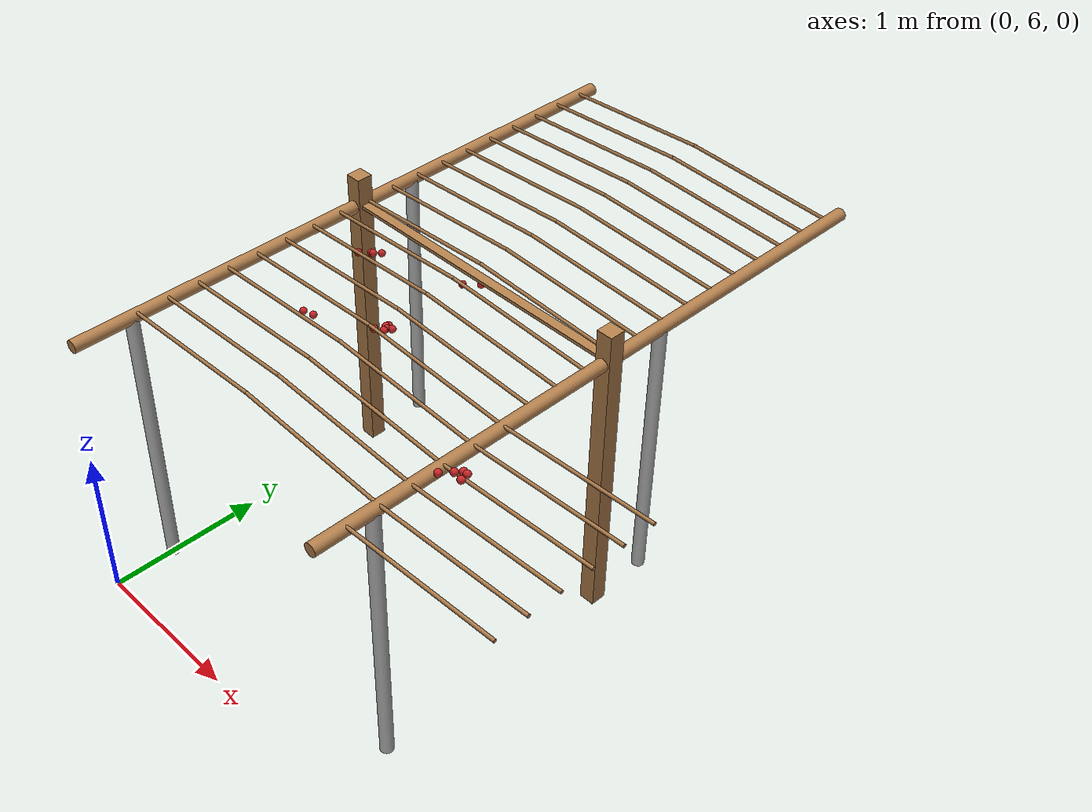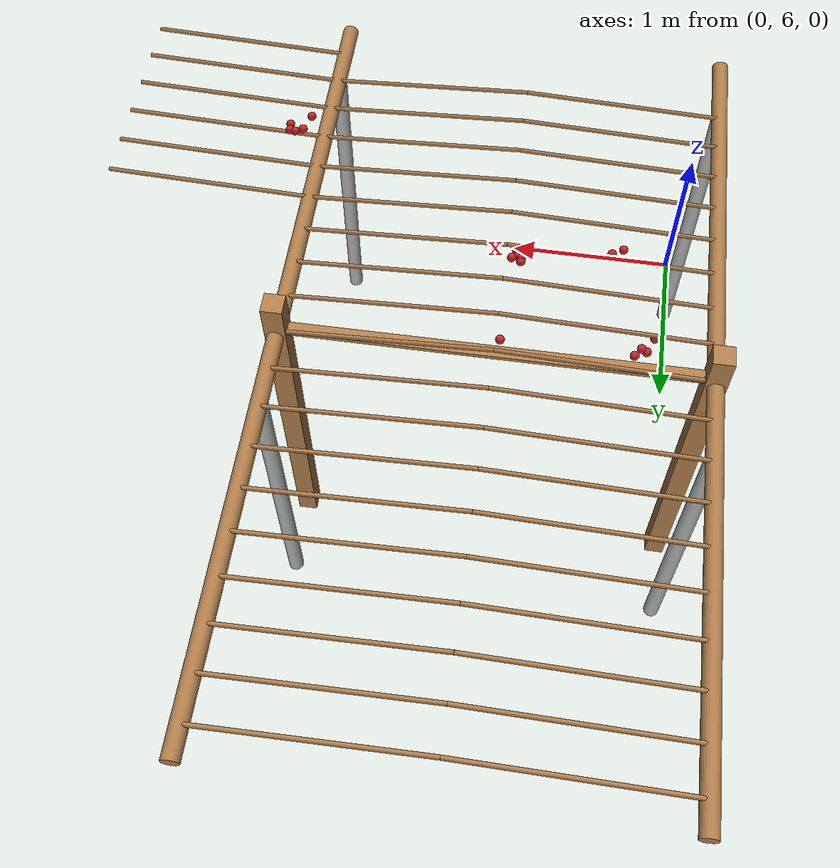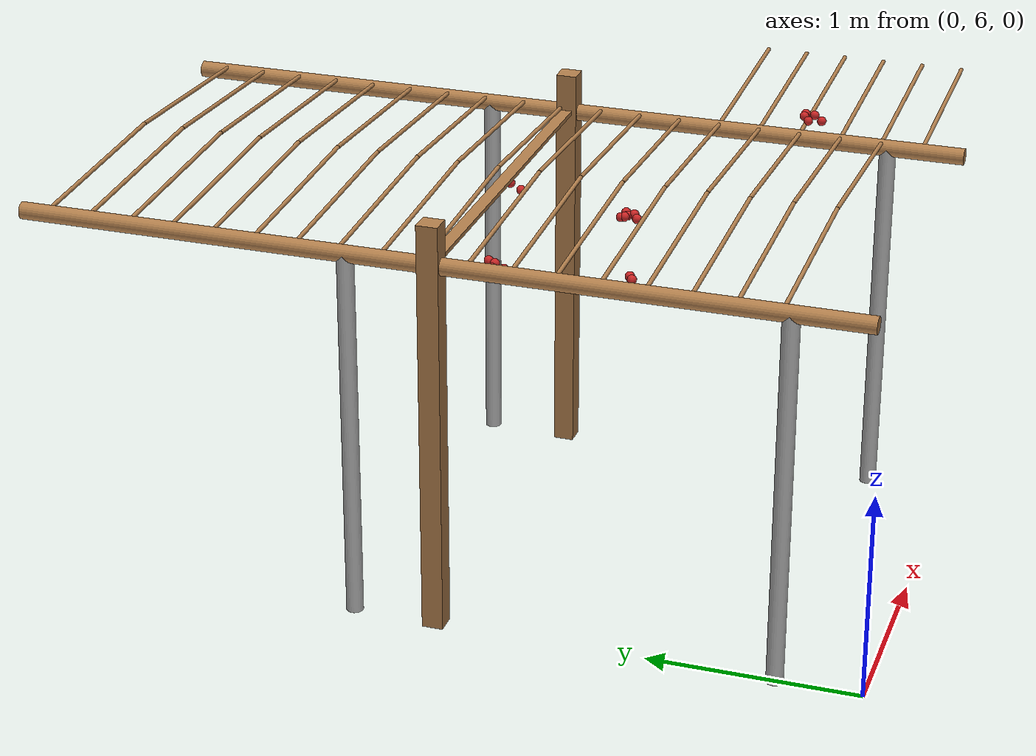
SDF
<sdf version="1.4">
 <model name="pergola">
  <include><name>post_4</name><pose>0.0 8.0 0 0 0 0</pose><uri>model://post</uri></include>
  <include><name>post_15</name><pose>2.0 8.0 0 0 0 0</pose><uri>model://post</uri></include>
  <link name="beam_4">
   <pose>1.0 8.0 1.81 0 0 0</pose>
   <collision name="collision"><geometry><box><size>2.0 0.06 0.02</size></box></geometry></collision>
   <visual name="visual">
    <geometry><box><size>2.0 0.06 0.02</size></box></geometry>
    <material><script><name>Gazebo/Wood</name></script></material>
   </visual>
   <inertial>
    <mass>5</mass>
    <inertia>
     <ixx>0.0016666666666666668</ixx>
     <ixy>0.0</ixy>
     <ixz>0.0</ixz>
     <iyy>1.6681666666666664</iyy>
     <iyz>0.0</iyz>
     <izz>1.6668333333333332</izz>
    </inertia>
   </inertial>
  </link>
  <include><name>tree_3</name><pose>0.0 6.4 0 0 0 0</pose><uri>model://tree_trunk</uri></include>
  <include><name>tree_4</name><pose>0.0 8.4 0 0 0 0</pose><uri>model://tree_trunk</uri></include>
  <include><name>tree_13</name><pose>2.0 6.4 0 0 0 0</pose><uri>model://tree_trunk</uri></include>
  <include><name>tree_14</name><pose>2.0 8.4 0 0 0 0</pose><uri>model://tree_trunk</uri></include>
  <link name="baseBranch_3">
   <pose>0.0 7.0 1.8 1.5707963267948966 0 0</pose>
   <collision name="collision">
    <geometry><cylinder><radius>0.04</radius><length>1.94</length></cylinder></geometry>
   </collision>
   <visual name="visual">
    <geometry><cylinder><radius>0.04</radius><length>1.94</length></cylinder></geometry>
    <material><script><name>Gazebo/WoodFloor</name></script></material>
   </visual>
   <inertial>
    <mass>10</mass>
    <inertia>
     <ixx>3.140333333333333</ixx>
     <ixy>0.0</ixy>
     <ixz>0.0</ixz>
     <iyy>3.140333333333333</iyy>
     <iyz>0.0</iyz>
     <izz>0.008</izz>
    </inertia>
   </inertial>
  </link>
  <link name="baseBranch_4">
   <pose>0.0 9.0 1.8 1.5707963267948966 0 0</pose>
   <collision name="collision">
    <geometry><cylinder><radius>0.04</radius><length>1.94</length></cylinder></geometry>
   </collision>
   <visual name="visual">
    <geometry><cylinder><radius>0.04</radius><length>1.94</length></cylinder></geometry>
    <material><script><name>Gazebo/WoodFloor</name></script></material>
   </visual>
   <inertial>
    <mass>10</mass>
    <inertia>
     <ixx>3.140333333333333</ixx>
     <ixy>0.0</ixy>
     <ixz>0.0</ixz>
     <iyy>3.140333333333333</iyy>
     <iyz>0.0</iyz>
     <izz>0.008</izz>
    </inertia>
   </inertial>
  </link>
  <link name="baseBranch_13">
   <pose>2.0 7.0 1.8 1.5707963267948966 0 0</pose>
   <collision name="collision">
    <geometry><cylinder><radius>0.04</radius><length>1.94</length></cylinder></geometry>
   </collision>
   <visual name="visual">
    <geometry><cylinder><radius>0.04</radius><length>1.94</length></cylinder></geometry>
    <material><script><name>Gazebo/WoodFloor</name></script></material>
   </visual>
   <inertial>
    <mass>10</mass>
    <inertia>
     <ixx>3.140333333333333</ixx>
     <ixy>0.0</ixy>
     <ixz>0.0</ixz>
     <iyy>3.140333333333333</iyy>
     <iyz>0.0</iyz>
     <izz>0.008</izz>
    </inertia>
   </inertial>
  </link>
  <link name="baseBranch_14">
   <pose>2.0 9.0 1.8 1.5707963267948966 0 0</pose>
   <collision name="collision">
    <geometry><cylinder><radius>0.04</radius><length>1.94</length></cylinder></geometry>
   </collision>
   <visual name="visual">
    <geometry><cylinder><radius>0.04</radius><length>1.94</length></cylinder></geometry>
    <material><script><name>Gazebo/WoodFloor</name></script></material>
   </visual>
   <inertial>
    <mass>10</mass>
    <inertia>
     <ixx>3.140333333333333</ixx>
     <ixy>0.0</ixy>
     <ixz>0.0</ixz>
     <iyy>3.140333333333333</iyy>
     <iyz>0.0</iyz>
     <izz>0.008</izz>
    </inertia>
   </inertial>
  </link>
  <link name="vine_64">
   <pose>0.5 6.430000000000001 1.85 0 1.5208379310729538 0</pose>
   <collision name="collision">
    <geometry><cylinder><radius>0.01</radius><length>1.0012492197250393</length></cylinder></geometry>
   </collision>
   <visual name="visual">
    <geometry><cylinder><radius>0.01</radius><length>1.0012492197250393</length></cylinder></geometry>
    <material><script><name>Gazebo/WoodFloor</name></script></material>
   </visual>
   <inertial>
    <mass>5</mass>
    <inertia>
     <ixx>0.41783333333333345</ixx>
     <ixy>0.0</ixy>
     <ixz>0.0</ixz>
     <iyy>0.41783333333333345</iyy>
     <iyz>0.0</iyz>
     <izz>0.00025</izz>
    </inertia>
   </inertial>
  </link>
  <link name="vine_65">
   <pose>1.5 6.430000000000001 1.85 0 -1.5208379310729538 0</pose>
   <collision name="collision">
    <geometry><cylinder><radius>0.01</radius><length>1.0012492197250393</length></cylinder></geometry>
   </collision>
   <visual name="visual">
    <geometry><cylinder><radius>0.01</radius><length>1.0012492197250393</length></cylinder></geometry>
    <material><script><name>Gazebo/WoodFloor</name></script></material>
   </visual>
   <inertial>
    <mass>5</mass>
    <inertia>
     <ixx>0.41783333333333345</ixx>
     <ixy>0.0</ixy>
     <ixz>0.0</ixz>
     <iyy>0.41783333333333345</iyy>
     <iyz>0.0</iyz>
     <izz>0.00025</izz>
    </inertia>
   </inertial>
  </link>
  <link name="vine_66">
   <pose>0.5 6.630000000000001 1.85 0 1.5208379310729538 0</pose>
   <collision name="collision">
    <geometry><cylinder><radius>0.01</radius><length>1.0012492197250393</length></cylinder></geometry>
   </collision>
   <visual name="visual">
    <geometry><cylinder><radius>0.01</radius><length>1.0012492197250393</length></cylinder></geometry>
    <material><script><name>Gazebo/WoodFloor</name></script></material>
   </visual>
   <inertial>
    <mass>5</mass>
    <inertia>
     <ixx>0.41783333333333345</ixx>
     <ixy>0.0</ixy>
     <ixz>0.0</ixz>
     <iyy>0.41783333333333345</iyy>
     <iyz>0.0</iyz>
     <izz>0.00025</izz>
    </inertia>
   </inertial>
  </link>
  <link name="vine_67">
   <pose>1.5 6.630000000000001 1.85 0 -1.5208379310729538 0</pose>
   <collision name="collision">
    <geometry><cylinder><radius>0.01</radius><length>1.0012492197250393</length></cylinder></geometry>
   </collision>
   <visual name="visual">
    <geometry><cylinder><radius>0.01</radius><length>1.0012492197250393</length></cylinder></geometry>
    <material><script><name>Gazebo/WoodFloor</name></script></material>
   </visual>
   <inertial>
    <mass>5</mass>
    <inertia>
     <ixx>0.41783333333333345</ixx>
     <ixy>0.0</ixy>
     <ixz>0.0</ixz>
     <iyy>0.41783333333333345</iyy>
     <iyz>0.0</iyz>
     <izz>0.00025</izz>
    </inertia>
   </inertial>
  </link>
  <link name="vine_68">
   <pose>0.5 6.830000000000001 1.85 0 1.5208379310729538 0</pose>
   <collision name="collision">
    <geometry><cylinder><radius>0.01</radius><length>1.0012492197250393</length></cylinder></geometry>
   </collision>
   <visual name="visual">
    <geometry><cylinder><radius>0.01</radius><length>1.0012492197250393</length></cylinder></geometry>
    <material><script><name>Gazebo/WoodFloor</name></script></material>
   </visual>
   <inertial>
    <mass>5</mass>
    <inertia>
     <ixx>0.41783333333333345</ixx>
     <ixy>0.0</ixy>
     <ixz>0.0</ixz>
     <iyy>0.41783333333333345</iyy>
     <iyz>0.0</iyz>
     <izz>0.00025</izz>
    </inertia>
   </inertial>
  </link>
  <link name="vine_69">
   <pose>1.5 6.830000000000001 1.85 0 -1.5208379310729538 0</pose>
   <collision name="collision">
    <geometry><cylinder><radius>0.01</radius><length>1.0012492197250393</length></cylinder></geometry>
   </collision>
   <visual name="visual">
    <geometry><cylinder><radius>0.01</radius><length>1.0012492197250393</length></cylinder></geometry>
    <material><script><name>Gazebo/WoodFloor</name></script></material>
   </visual>
   <inertial>
    <mass>5</mass>
    <inertia>
     <ixx>0.41783333333333345</ixx>
     <ixy>0.0</ixy>
     <ixz>0.0</ixz>
     <iyy>0.41783333333333345</iyy>
     <iyz>0.0</iyz>
     <izz>0.00025</izz>
    </inertia>
   </inertial>
  </link>
  <link name="vine_70">
   <pose>0.5 7.03 1.85 0 1.5208379310729538 0</pose>
   <collision name="collision">
    <geometry><cylinder><radius>0.01</radius><length>1.0012492197250393</length></cylinder></geometry>
   </collision>
   <visual name="visual">
    <geometry><cylinder><radius>0.01</radius><length>1.0012492197250393</length></cylinder></geometry>
    <material><script><name>Gazebo/WoodFloor</name></script></material>
   </visual>
   <inertial>
    <mass>5</mass>
    <inertia>
     <ixx>0.41783333333333345</ixx>
     <ixy>0.0</ixy>
     <ixz>0.0</ixz>
     <iyy>0.41783333333333345</iyy>
     <iyz>0.0</iyz>
     <izz>0.00025</izz>
    </inertia>
   </inertial>
  </link>
  <link name="vine_71">
   <pose>1.5 7.03 1.85 0 -1.5208379310729538 0</pose>
   <collision name="collision">
    <geometry><cylinder><radius>0.01</radius><length>1.0012492197250393</length></cylinder></geometry>
   </collision>
   <visual name="visual">
    <geometry><cylinder><radius>0.01</radius><length>1.0012492197250393</length></cylinder></geometry>
    <material><script><name>Gazebo/WoodFloor</name></script></material>
   </visual>
   <inertial>
    <mass>5</mass>
    <inertia>
     <ixx>0.41783333333333345</ixx>
     <ixy>0.0</ixy>
     <ixz>0.0</ixz>
     <iyy>0.41783333333333345</iyy>
     <iyz>0.0</iyz>
     <izz>0.00025</izz>
    </inertia>
   </inertial>
  </link>
  <link name="vine_72">
   <pose>0.5 7.23 1.85 0 1.5208379310729538 0</pose>
   <collision name="collision">
    <geometry><cylinder><radius>0.01</radius><length>1.0012492197250393</length></cylinder></geometry>
   </collision>
   <visual name="visual">
    <geometry><cylinder><radius>0.01</radius><length>1.0012492197250393</length></cylinder></geometry>
    <material><script><name>Gazebo/WoodFloor</name></script></material>
   </visual>
   <inertial>
    <mass>5</mass>
    <inertia>
     <ixx>0.41783333333333345</ixx>
     <ixy>0.0</ixy>
     <ixz>0.0</ixz>
     <iyy>0.41783333333333345</iyy>
     <iyz>0.0</iyz>
     <izz>0.00025</izz>
    </inertia>
   </inertial>
  </link>
  <link name="vine_73">
   <pose>1.5 7.23 1.85 0 -1.5208379310729538 0</pose>
   <collision name="collision">
    <geometry><cylinder><radius>0.01</radius><length>1.0012492197250393</length></cylinder></geometry>
   </collision>
   <visual name="visual">
    <geometry><cylinder><radius>0.01</radius><length>1.0012492197250393</length></cylinder></geometry>
    <material><script><name>Gazebo/WoodFloor</name></script></material>
   </visual>
   <inertial>
    <mass>5</mass>
    <inertia>
     <ixx>0.41783333333333345</ixx>
     <ixy>0.0</ixy>
     <ixz>0.0</ixz>
     <iyy>0.41783333333333345</iyy>
     <iyz>0.0</iyz>
     <izz>0.00025</izz>
    </inertia>
   </inertial>
  </link>
  <link name="vine_74">
   <pose>0.5 7.430000000000001 1.85 0 1.5208379310729538 0</pose>
   <collision name="collision">
    <geometry><cylinder><radius>0.01</radius><length>1.0012492197250393</length></cylinder></geometry>
   </collision>
   <visual name="visual">
    <geometry><cylinder><radius>0.01</radius><length>1.0012492197250393</length></cylinder></geometry>
    <material><script><name>Gazebo/WoodFloor</name></script></material>
   </visual>
   <inertial>
    <mass>5</mass>
    <inertia>
     <ixx>0.41783333333333345</ixx>
     <ixy>0.0</ixy>
     <ixz>0.0</ixz>
     <iyy>0.41783333333333345</iyy>
     <iyz>0.0</iyz>
     <izz>0.00025</izz>
    </inertia>
   </inertial>
  </link>
  <link name="vine_75">
   <pose>1.5 7.430000000000001 1.85 0 -1.5208379310729538 0</pose>
   <collision name="collision">
    <geometry><cylinder><radius>0.01</radius><length>1.0012492197250393</length></cylinder></geometry>
   </collision>
   <visual name="visual">
    <geometry><cylinder><radius>0.01</radius><length>1.0012492197250393</length></cylinder></geometry>
    <material><script><name>Gazebo/WoodFloor</name></script></material>
   </visual>
   <inertial>
    <mass>5</mass>
    <inertia>
     <ixx>0.41783333333333345</ixx>
     <ixy>0.0</ixy>
     <ixz>0.0</ixz>
     <iyy>0.41783333333333345</iyy>
     <iyz>0.0</iyz>
     <izz>0.00025</izz>
    </inertia>
   </inertial>
  </link>
  <link name="vine_76">
   <pose>0.5 7.630000000000001 1.85 0 1.5208379310729538 0</pose>
   <collision name="collision">
    <geometry><cylinder><radius>0.01</radius><length>1.0012492197250393</length></cylinder></geometry>
   </collision>
   <visual name="visual">
    <geometry><cylinder><radius>0.01</radius><length>1.0012492197250393</length></cylinder></geometry>
    <material><script><name>Gazebo/WoodFloor</name></script></material>
   </visual>
   <inertial>
    <mass>5</mass>
    <inertia>
     <ixx>0.41783333333333345</ixx>
     <ixy>0.0</ixy>
     <ixz>0.0</ixz>
     <iyy>0.41783333333333345</iyy>
     <iyz>0.0</iyz>
     <izz>0.00025</izz>
    </inertia>
   </inertial>
  </link>
  <link name="vine_77">
   <pose>1.5 7.630000000000001 1.85 0 -1.5208379310729538 0</pose>
   <collision name="collision">
    <geometry><cylinder><radius>0.01</radius><length>1.0012492197250393</length></cylinder></geometry>
   </collision>
   <visual name="visual">
    <geometry><cylinder><radius>0.01</radius><length>1.0012492197250393</length></cylinder></geometry>
    <material><script><name>Gazebo/WoodFloor</name></script></material>
   </visual>
   <inertial>
    <mass>5</mass>
    <inertia>
     <ixx>0.41783333333333345</ixx>
     <ixy>0.0</ixy>
     <ixz>0.0</ixz>
     <iyy>0.41783333333333345</iyy>
     <iyz>0.0</iyz>
     <izz>0.00025</izz>
    </inertia>
   </inertial>
  </link>
  <link name="vine_78">
   <pose>0.5 7.830000000000001 1.85 0 1.5208379310729538 0</pose>
   <collision name="collision">
    <geometry><cylinder><radius>0.01</radius><length>1.0012492197250393</length></cylinder></geometry>
   </collision>
   <visual name="visual">
    <geometry><cylinder><radius>0.01</radius><length>1.0012492197250393</length></cylinder></geometry>
    <material><script><name>Gazebo/WoodFloor</name></script></material>
   </visual>
   <inertial>
    <mass>5</mass>
    <inertia>
     <ixx>0.41783333333333345</ixx>
     <ixy>0.0</ixy>
     <ixz>0.0</ixz>
     <iyy>0.41783333333333345</iyy>
     <iyz>0.0</iyz>
     <izz>0.00025</izz>
    </inertia>
   </inertial>
  </link>
  <link name="vine_79">
   <pose>1.5 7.830000000000001 1.85 0 -1.5208379310729538 0</pose>
   <collision name="collision">
    <geometry><cylinder><radius>0.01</radius><length>1.0012492197250393</length></cylinder></geometry>
   </collision>
   <visual name="visual">
    <geometry><cylinder><radius>0.01</radius><length>1.0012492197250393</length></cylinder></geometry>
    <material><script><name>Gazebo/WoodFloor</name></script></material>
   </visual>
   <inertial>
    <mass>5</mass>
    <inertia>
     <ixx>0.41783333333333345</ixx>
     <ixy>0.0</ixy>
     <ixz>0.0</ixz>
     <iyy>0.41783333333333345</iyy>
     <iyz>0.0</iyz>
     <izz>0.00025</izz>
    </inertia>
   </inertial>
  </link>
  <link name="vine_80">
   <pose>0.5 8.03 1.85 0 1.5208379310729538 0</pose>
   <collision name="collision">
    <geometry><cylinder><radius>0.01</radius><length>1.0012492197250393</length></cylinder></geometry>
   </collision>
   <visual name="visual">
    <geometry><cylinder><radius>0.01</radius><length>1.0012492197250393</length></cylinder></geometry>
    <material><script><name>Gazebo/WoodFloor</name></script></material>
   </visual>
   <inertial>
    <mass>5</mass>
    <inertia>
     <ixx>0.41783333333333345</ixx>
     <ixy>0.0</ixy>
     <ixz>0.0</ixz>
     <iyy>0.41783333333333345</iyy>
     <iyz>0.0</iyz>
     <izz>0.00025</izz>
    </inertia>
   </inertial>
  </link>
  <link name="vine_81">
   <pose>1.5 8.03 1.85 0 -1.5208379310729538 0</pose>
   <collision name="collision">
    <geometry><cylinder><radius>0.01</radius><length>1.0012492197250393</length></cylinder></geometry>
   </collision>
   <visual name="visual">
    <geometry><cylinder><radius>0.01</radius><length>1.0012492197250393</length></cylinder></geometry>
    <material><script><name>Gazebo/WoodFloor</name></script></material>
   </visual>
   <inertial>
    <mass>5</mass>
    <inertia>
     <ixx>0.41783333333333345</ixx>
     <ixy>0.0</ixy>
     <ixz>0.0</ixz>
     <iyy>0.41783333333333345</iyy>
     <iyz>0.0</iyz>
     <izz>0.00025</izz>
    </inertia>
   </inertial>
  </link>
  <link name="vine_82">
   <pose>0.5 8.23 1.85 0 1.5208379310729538 0</pose>
   <collision name="collision">
    <geometry><cylinder><radius>0.01</radius><length>1.0012492197250393</length></cylinder></geometry>
   </collision>
   <visual name="visual">
    <geometry><cylinder><radius>0.01</radius><length>1.0012492197250393</length></cylinder></geometry>
    <material><script><name>Gazebo/WoodFloor</name></script></material>
   </visual>
   <inertial>
    <mass>5</mass>
    <inertia>
     <ixx>0.41783333333333345</ixx>
     <ixy>0.0</ixy>
     <ixz>0.0</ixz>
     <iyy>0.41783333333333345</iyy>
     <iyz>0.0</iyz>
     <izz>0.00025</izz>
    </inertia>
   </inertial>
  </link>
  <link name="vine_83">
   <pose>1.5 8.23 1.85 0 -1.5208379310729538 0</pose>
   <collision name="collision">
    <geometry><cylinder><radius>0.01</radius><length>1.0012492197250393</length></cylinder></geometry>
   </collision>
   <visual name="visual">
    <geometry><cylinder><radius>0.01</radius><length>1.0012492197250393</length></cylinder></geometry>
    <material><script><name>Gazebo/WoodFloor</name></script></material>
   </visual>
   <inertial>
    <mass>5</mass>
    <inertia>
     <ixx>0.41783333333333345</ixx>
     <ixy>0.0</ixy>
     <ixz>0.0</ixz>
     <iyy>0.41783333333333345</iyy>
     <iyz>0.0</iyz>
     <izz>0.00025</izz>
    </inertia>
   </inertial>
  </link>
  <link name="vine_84">
   <pose>0.5 8.43 1.85 0 1.5208379310729538 0</pose>
   <collision name="collision">
    <geometry><cylinder><radius>0.01</radius><length>1.0012492197250393</length></cylinder></geometry>
   </collision>
   <visual name="visual">
    <geometry><cylinder><radius>0.01</radius><length>1.0012492197250393</length></cylinder></geometry>
    <material><script><name>Gazebo/WoodFloor</name></script></material>
   </visual>
   <inertial>
    <mass>5</mass>
    <inertia>
     <ixx>0.41783333333333345</ixx>
     <ixy>0.0</ixy>
     <ixz>0.0</ixz>
     <iyy>0.41783333333333345</iyy>
     <iyz>0.0</iyz>
     <izz>0.00025</izz>
    </inertia>
   </inertial>
  </link>
  <link name="vine_85">
   <pose>1.5 8.43 1.85 0 -1.5208379310729538 0</pose>
   <collision name="collision">
    <geometry><cylinder><radius>0.01</radius><length>1.0012492197250393</length></cylinder></geometry>
   </collision>
   <visual name="visual">
    <geometry><cylinder><radius>0.01</radius><length>1.0012492197250393</length></cylinder></geometry>
    <material><script><name>Gazebo/WoodFloor</name></script></material>
   </visual>
   <inertial>
    <mass>5</mass>
    <inertia>
     <ixx>0.41783333333333345</ixx>
     <ixy>0.0</ixy>
     <ixz>0.0</ixz>
     <iyy>0.41783333333333345</iyy>
     <iyz>0.0</iyz>
     <izz>0.00025</izz>
    </inertia>
   </inertial>
  </link>
  <link name="vine_86">
   <pose>0.5 8.629999999999999 1.85 0 1.5208379310729538 0</pose>
   <collision name="collision">
    <geometry><cylinder><radius>0.01</radius><length>1.0012492197250393</length></cylinder></geometry>
   </collision>
   <visual name="visual">
    <geometry><cylinder><radius>0.01</radius><length>1.0012492197250393</length></cylinder></geometry>
    <material><script><name>Gazebo/WoodFloor</name></script></material>
   </visual>
   <inertial>
    <mass>5</mass>
    <inertia>
     <ixx>0.41783333333333345</ixx>
     <ixy>0.0</ixy>
     <ixz>0.0</ixz>
     <iyy>0.41783333333333345</iyy>
     <iyz>0.0</iyz>
     <izz>0.00025</izz>
    </inertia>
   </inertial>
  </link>
  <link name="vine_87">
   <pose>1.5 8.629999999999999 1.85 0 -1.5208379310729538 0</pose>
   <collision name="collision">
    <geometry><cylinder><radius>0.01</radius><length>1.0012492197250393</length></cylinder></geometry>
   </collision>
   <visual name="visual">
    <geometry><cylinder><radius>0.01</radius><length>1.0012492197250393</length></cylinder></geometry>
    <material><script><name>Gazebo/WoodFloor</name></script></material>
   </visual>
   <inertial>
    <mass>5</mass>
    <inertia>
     <ixx>0.41783333333333345</ixx>
     <ixy>0.0</ixy>
     <ixz>0.0</ixz>
     <iyy>0.41783333333333345</iyy>
     <iyz>0.0</iyz>
     <izz>0.00025</izz>
    </inertia>
   </inertial>
  </link>
  <link name="vine_88">
   <pose>0.5 8.83 1.85 0 1.5208379310729538 0</pose>
   <collision name="collision">
    <geometry><cylinder><radius>0.01</radius><length>1.0012492197250393</length></cylinder></geometry>
   </collision>
   <visual name="visual">
    <geometry><cylinder><radius>0.01</radius><length>1.0012492197250393</length></cylinder></geometry>
    <material><script><name>Gazebo/WoodFloor</name></script></material>
   </visual>
   <inertial>
    <mass>5</mass>
    <inertia>
     <ixx>0.41783333333333345</ixx>
     <ixy>0.0</ixy>
     <ixz>0.0</ixz>
     <iyy>0.41783333333333345</iyy>
     <iyz>0.0</iyz>
     <izz>0.00025</izz>
    </inertia>
   </inertial>
  </link>
  <link name="vine_89">
   <pose>1.5 8.83 1.85 0 -1.5208379310729538 0</pose>
   <collision name="collision">
    <geometry><cylinder><radius>0.01</radius><length>1.0012492197250393</length></cylinder></geometry>
   </collision>
   <visual name="visual">
    <geometry><cylinder><radius>0.01</radius><length>1.0012492197250393</length></cylinder></geometry>
    <material><script><name>Gazebo/WoodFloor</name></script></material>
   </visual>
   <inertial>
    <mass>5</mass>
    <inertia>
     <ixx>0.41783333333333345</ixx>
     <ixy>0.0</ixy>
     <ixz>0.0</ixz>
     <iyy>0.41783333333333345</iyy>
     <iyz>0.0</iyz>
     <izz>0.00025</izz>
    </inertia>
   </inertial>
  </link>
  <link name="vine_90">
   <pose>0.5 9.03 1.85 0 1.5208379310729538 0</pose>
   <collision name="collision">
    <geometry><cylinder><radius>0.01</radius><length>1.0012492197250393</length></cylinder></geometry>
   </collision>
   <visual name="visual">
    <geometry><cylinder><radius>0.01</radius><length>1.0012492197250393</length></cylinder></geometry>
    <material><script><name>Gazebo/WoodFloor</name></script></material>
   </visual>
   <inertial>
    <mass>5</mass>
    <inertia>
     <ixx>0.41783333333333345</ixx>
     <ixy>0.0</ixy>
     <ixz>0.0</ixz>
     <iyy>0.41783333333333345</iyy>
     <iyz>0.0</iyz>
     <izz>0.00025</izz>
    </inertia>
   </inertial>
  </link>
  <link name="vine_91">
   <pose>1.5 9.03 1.85 0 -1.5208379310729538 0</pose>
   <collision name="collision">
    <geometry><cylinder><radius>0.01</radius><length>1.0012492197250393</length></cylinder></geometry>
   </collision>
   <visual name="visual">
    <geometry><cylinder><radius>0.01</radius><length>1.0012492197250393</length></cylinder></geometry>
    <material><script><name>Gazebo/WoodFloor</name></script></material>
   </visual>
   <inertial>
    <mass>5</mass>
    <inertia>
     <ixx>0.41783333333333345</ixx>
     <ixy>0.0</ixy>
     <ixz>0.0</ixz>
     <iyy>0.41783333333333345</iyy>
     <iyz>0.0</iyz>
     <izz>0.00025</izz>
    </inertia>
   </inertial>
  </link>
  <link name="vine_92">
   <pose>0.5 9.23 1.85 0 1.5208379310729538 0</pose>
   <collision name="collision">
    <geometry><cylinder><radius>0.01</radius><length>1.0012492197250393</length></cylinder></geometry>
   </collision>
   <visual name="visual">
    <geometry><cylinder><radius>0.01</radius><length>1.0012492197250393</length></cylinder></geometry>
    <material><script><name>Gazebo/WoodFloor</name></script></material>
   </visual>
   <inertial>
    <mass>5</mass>
    <inertia>
     <ixx>0.41783333333333345</ixx>
     <ixy>0.0</ixy>
     <ixz>0.0</ixz>
     <iyy>0.41783333333333345</iyy>
     <iyz>0.0</iyz>
     <izz>0.00025</izz>
    </inertia>
   </inertial>
  </link>
  <link name="vine_93">
   <pose>1.5 9.23 1.85 0 -1.5208379310729538 0</pose>
   <collision name="collision">
    <geometry><cylinder><radius>0.01</radius><length>1.0012492197250393</length></cylinder></geometry>
   </collision>
   <visual name="visual">
    <geometry><cylinder><radius>0.01</radius><length>1.0012492197250393</length></cylinder></geometry>
    <material><script><name>Gazebo/WoodFloor</name></script></material>
   </visual>
   <inertial>
    <mass>5</mass>
    <inertia>
     <ixx>0.41783333333333345</ixx>
     <ixy>0.0</ixy>
     <ixz>0.0</ixz>
     <iyy>0.41783333333333345</iyy>
     <iyz>0.0</iyz>
     <izz>0.00025</izz>
    </inertia>
   </inertial>
  </link>
  <link name="vine_94">
   <pose>0.5 9.43 1.85 0 1.5208379310729538 0</pose>
   <collision name="collision">
    <geometry><cylinder><radius>0.01</radius><length>1.0012492197250393</length></cylinder></geometry>
   </collision>
   <visual name="visual">
    <geometry><cylinder><radius>0.01</radius><length>1.0012492197250393</length></cylinder></geometry>
    <material><script><name>Gazebo/WoodFloor</name></script></material>
   </visual>
   <inertial>
    <mass>5</mass>
    <inertia>
     <ixx>0.41783333333333345</ixx>
     <ixy>0.0</ixy>
     <ixz>0.0</ixz>
     <iyy>0.41783333333333345</iyy>
     <iyz>0.0</iyz>
     <izz>0.00025</izz>
    </inertia>
   </inertial>
  </link>
  <link name="vine_95">
   <pose>1.5 9.43 1.85 0 -1.5208379310729538 0</pose>
   <collision name="collision">
    <geometry><cylinder><radius>0.01</radius><length>1.0012492197250393</length></cylinder></geometry>
   </collision>
   <visual name="visual">
    <geometry><cylinder><radius>0.01</radius><length>1.0012492197250393</length></cylinder></geometry>
    <material><script><name>Gazebo/WoodFloor</name></script></material>
   </visual>
   <inertial>
    <mass>5</mass>
    <inertia>
     <ixx>0.41783333333333345</ixx>
     <ixy>0.0</ixy>
     <ixz>0.0</ixz>
     <iyy>0.41783333333333345</iyy>
     <iyz>0.0</iyz>
     <izz>0.00025</izz>
    </inertia>
   </inertial>
  </link>
  <link name="vine_96">
   <pose>0.5 9.63 1.85 0 1.5208379310729538 0</pose>
   <collision name="collision">
    <geometry><cylinder><radius>0.01</radius><length>1.0012492197250393</length></cylinder></geometry>
   </collision>
   <visual name="visual">
    <geometry><cylinder><radius>0.01</radius><length>1.0012492197250393</length></cylinder></geometry>
    <material><script><name>Gazebo/WoodFloor</name></script></material>
   </visual>
   <inertial>
    <mass>5</mass>
    <inertia>
     <ixx>0.41783333333333345</ixx>
     <ixy>0.0</ixy>
     <ixz>0.0</ixz>
     <iyy>0.41783333333333345</iyy>
     <iyz>0.0</iyz>
     <izz>0.00025</izz>
    </inertia>
   </inertial>
  </link>
  <link name="vine_97">
   <pose>1.5 9.63 1.85 0 -1.5208379310729538 0</pose>
   <collision name="collision">
    <geometry><cylinder><radius>0.01</radius><length>1.0012492197250393</length></cylinder></geometry>
   </collision>
   <visual name="visual">
    <geometry><cylinder><radius>0.01</radius><length>1.0012492197250393</length></cylinder></geometry>
    <material><script><name>Gazebo/WoodFloor</name></script></material>
   </visual>
   <inertial>
    <mass>5</mass>
    <inertia>
     <ixx>0.41783333333333345</ixx>
     <ixy>0.0</ixy>
     <ixz>0.0</ixz>
     <iyy>0.41783333333333345</iyy>
     <iyz>0.0</iyz>
     <izz>0.00025</izz>
    </inertia>
   </inertial>
  </link>
  <link name="vine_98">
   <pose>0.5 9.83 1.85 0 1.5208379310729538 0</pose>
   <collision name="collision">
    <geometry><cylinder><radius>0.01</radius><length>1.0012492197250393</length></cylinder></geometry>
   </collision>
   <visual name="visual">
    <geometry><cylinder><radius>0.01</radius><length>1.0012492197250393</length></cylinder></geometry>
    <material><script><name>Gazebo/WoodFloor</name></script></material>
   </visual>
   <inertial>
    <mass>5</mass>
    <inertia>
     <ixx>0.41783333333333345</ixx>
     <ixy>0.0</ixy>
     <ixz>0.0</ixz>
     <iyy>0.41783333333333345</iyy>
     <iyz>0.0</iyz>
     <izz>0.00025</izz>
    </inertia>
   </inertial>
  </link>
  <link name="vine_99">
   <pose>1.5 9.83 1.85 0 -1.5208379310729538 0</pose>
   <collision name="collision">
    <geometry><cylinder><radius>0.01</radius><length>1.0012492197250393</length></cylinder></geometry>
   </collision>
   <visual name="visual">
    <geometry><cylinder><radius>0.01</radius><length>1.0012492197250393</length></cylinder></geometry>
    <material><script><name>Gazebo/WoodFloor</name></script></material>
   </visual>
   <inertial>
    <mass>5</mass>
    <inertia>
     <ixx>0.41783333333333345</ixx>
     <ixy>0.0</ixy>
     <ixz>0.0</ixz>
     <iyy>0.41783333333333345</iyy>
     <iyz>0.0</iyz>
     <izz>0.00025</izz>
    </inertia>
   </inertial>
  </link>
  <link name="vine_262">
   <pose>2.5 6.23 1.85 0 1.5208379310729538 0</pose>
   <collision name="collision">
    <geometry><cylinder><radius>0.01</radius><length>1.0012492197250393</length></cylinder></geometry>
   </collision>
   <visual name="visual">
    <geometry><cylinder><radius>0.01</radius><length>1.0012492197250393</length></cylinder></geometry>
    <material><script><name>Gazebo/WoodFloor</name></script></material>
   </visual>
   <inertial>
    <mass>5</mass>
    <inertia>
     <ixx>0.41783333333333345</ixx>
     <ixy>0.0</ixy>
     <ixz>0.0</ixz>
     <iyy>0.41783333333333345</iyy>
     <iyz>0.0</iyz>
     <izz>0.00025</izz>
    </inertia>
   </inertial>
  </link>
  <link name="vine_264">
   <pose>2.5 6.430000000000001 1.85 0 1.5208379310729538 0</pose>
   <collision name="collision">
    <geometry><cylinder><radius>0.01</radius><length>1.0012492197250393</length></cylinder></geometry>
   </collision>
   <visual name="visual">
    <geometry><cylinder><radius>0.01</radius><length>1.0012492197250393</length></cylinder></geometry>
    <material><script><name>Gazebo/WoodFloor</name></script></material>
   </visual>
   <inertial>
    <mass>5</mass>
    <inertia>
     <ixx>0.41783333333333345</ixx>
     <ixy>0.0</ixy>
     <ixz>0.0</ixz>
     <iyy>0.41783333333333345</iyy>
     <iyz>0.0</iyz>
     <izz>0.00025</izz>
    </inertia>
   </inertial>
  </link>
  <link name="vine_266">
   <pose>2.5 6.630000000000001 1.85 0 1.5208379310729538 0</pose>
   <collision name="collision">
    <geometry><cylinder><radius>0.01</radius><length>1.0012492197250393</length></cylinder></geometry>
   </collision>
   <visual name="visual">
    <geometry><cylinder><radius>0.01</radius><length>1.0012492197250393</length></cylinder></geometry>
    <material><script><name>Gazebo/WoodFloor</name></script></material>
   </visual>
   <inertial>
    <mass>5</mass>
    <inertia>
     <ixx>0.41783333333333345</ixx>
     <ixy>0.0</ixy>
     <ixz>0.0</ixz>
     <iyy>0.41783333333333345</iyy>
     <iyz>0.0</iyz>
     <izz>0.00025</izz>
    </inertia>
   </inertial>
  </link>
  <link name="vine_268">
   <pose>2.5 6.830000000000001 1.85 0 1.5208379310729538 0</pose>
   <collision name="collision">
    <geometry><cylinder><radius>0.01</radius><length>1.0012492197250393</length></cylinder></geometry>
   </collision>
   <visual name="visual">
    <geometry><cylinder><radius>0.01</radius><length>1.0012492197250393</length></cylinder></geometry>
    <material><script><name>Gazebo/WoodFloor</name></script></material>
   </visual>
   <inertial>
    <mass>5</mass>
    <inertia>
     <ixx>0.41783333333333345</ixx>
     <ixy>0.0</ixy>
     <ixz>0.0</ixz>
     <iyy>0.41783333333333345</iyy>
     <iyz>0.0</iyz>
     <izz>0.00025</izz>
    </inertia>
   </inertial>
  </link>
  <link name="vine_270">
   <pose>2.5 7.03 1.85 0 1.5208379310729538 0</pose>
   <collision name="collision">
    <geometry><cylinder><radius>0.01</radius><length>1.0012492197250393</length></cylinder></geometry>
   </collision>
   <visual name="visual">
    <geometry><cylinder><radius>0.01</radius><length>1.0012492197250393</length></cylinder></geometry>
    <material><script><name>Gazebo/WoodFloor</name></script></material>
   </visual>
   <inertial>
    <mass>5</mass>
    <inertia>
     <ixx>0.41783333333333345</ixx>
     <ixy>0.0</ixy>
     <ixz>0.0</ixz>
     <iyy>0.41783333333333345</iyy>
     <iyz>0.0</iyz>
     <izz>0.00025</izz>
    </inertia>
   </inertial>
  </link>
  <link name="vine_272">
   <pose>2.5 7.23 1.85 0 1.5208379310729538 0</pose>
   <collision name="collision">
    <geometry><cylinder><radius>0.01</radius><length>1.0012492197250393</length></cylinder></geometry>
   </collision>
   <visual name="visual">
    <geometry><cylinder><radius>0.01</radius><length>1.0012492197250393</length></cylinder></geometry>
    <material><script><name>Gazebo/WoodFloor</name></script></material>
   </visual>
   <inertial>
    <mass>5</mass>
    <inertia>
     <ixx>0.41783333333333345</ixx>
     <ixy>0.0</ixy>
     <ixz>0.0</ixz>
     <iyy>0.41783333333333345</iyy>
     <iyz>0.0</iyz>
     <izz>0.00025</izz>
    </inertia>
   </inertial>
  </link>
  <link name="fruit_142">
   <pose>0.9056643080769421 7.33164534062245 1.744756768413245 0 0 0</pose>
   <collision name="fruit_collision_142"><geometry><sphere><radius>0.022</radius></sphere></geometry></collision>
   <visual name="visual">
    <geometry><sphere><radius>0.022</radius></sphere></geometry>
    <material><script><name>Gazebo/Red</name></script></material>
   </visual>
   <inertial>
    <mass>0.05</mass>
    <inertia>
     <ixx>9.679999999999999e-06</ixx>
     <ixy>0.0</ixy>
     <ixz>0.0</ixz>
     <iyy>9.679999999999999e-06</iyy>
     <iyz>0.0</iyz>
     <izz>9.679999999999999e-06</izz>
    </inertia>
   </inertial>
   <sensor name="fruit_contact_142" type="contact">
    <contact><collision>fruit_collision_142</collision></contact>
   </sensor>
  </link>
  <link name="fruit_176">
   <pose>0.4325497009886997 7.216233516605767 1.6578849885617553 0 0 0</pose>
   <collision name="fruit_collision_176"><geometry><sphere><radius>0.022</radius></sphere></geometry></collision>
   <visual name="visual">
    <geometry><sphere><radius>0.022</radius></sphere></geometry>
    <material><script><name>Gazebo/Red</name></script></material>
   </visual>
   <inertial>
    <mass>0.05</mass>
    <inertia>
     <ixx>9.679999999999999e-06</ixx>
     <ixy>0.0</ixy>
     <ixz>0.0</ixz>
     <iyy>9.679999999999999e-06</iyy>
     <iyz>0.0</iyz>
     <izz>9.679999999999999e-06</izz>
    </inertia>
   </inertial>
   <sensor name="fruit_contact_176" type="contact">
    <contact><collision>fruit_collision_176</collision></contact>
   </sensor>
  </link>
  <link name="fruit_190">
   <pose>0.264911644772946 7.754499769614375 1.7053633074054024 0 0 0</pose>
   <collision name="fruit_collision_190"><geometry><sphere><radius>0.022</radius></sphere></geometry></collision>
   <visual name="visual">
    <geometry><sphere><radius>0.022</radius></sphere></geometry>
    <material><script><name>Gazebo/Red</name></script></material>
   </visual>
   <inertial>
    <mass>0.05</mass>
    <inertia>
     <ixx>9.679999999999999e-06</ixx>
     <ixy>0.0</ixy>
     <ixz>0.0</ixz>
     <iyy>9.679999999999999e-06</iyy>
     <iyz>0.0</iyz>
     <izz>9.679999999999999e-06</izz>
    </inertia>
   </inertial>
   <sensor name="fruit_contact_190" type="contact">
    <contact><collision>fruit_collision_190</collision></contact>
   </sensor>
  </link>
  <link name="fruit_201">
   <pose>0.9797205816785439 7.9108112197531675 1.784300788948057 0 0 0</pose>
   <collision name="fruit_collision_201"><geometry><sphere><radius>0.022</radius></sphere></geometry></collision>
   <visual name="visual">
    <geometry><sphere><radius>0.022</radius></sphere></geometry>
    <material><script><name>Gazebo/Red</name></script></material>
   </visual>
   <inertial>
    <mass>0.05</mass>
    <inertia>
     <ixx>9.679999999999999e-06</ixx>
     <ixy>0.0</ixy>
     <ixz>0.0</ixz>
     <iyy>9.679999999999999e-06</iyy>
     <iyz>0.0</iyz>
     <izz>9.679999999999999e-06</izz>
    </inertia>
   </inertial>
   <sensor name="fruit_contact_201" type="contact">
    <contact><collision>fruit_collision_201</collision></contact>
   </sensor>
  </link>
  <link name="fruit_225">
   <pose>2.074463497114558 6.742316935774711 1.8693384924281296 0 0 0</pose>
   <collision name="fruit_collision_225"><geometry><sphere><radius>0.022</radius></sphere></geometry></collision>
   <visual name="visual">
    <geometry><sphere><radius>0.022</radius></sphere></geometry>
    <material><script><name>Gazebo/Red</name></script></material>
   </visual>
   <inertial>
    <mass>0.05</mass>
    <inertia>
     <ixx>9.679999999999999e-06</ixx>
     <ixy>0.0</ixy>
     <ixz>0.0</ixz>
     <iyy>9.679999999999999e-06</iyy>
     <iyz>0.0</iyz>
     <izz>9.679999999999999e-06</izz>
    </inertia>
   </inertial>
   <sensor name="fruit_contact_225" type="contact">
    <contact><collision>fruit_collision_225</collision></contact>
   </sensor>
  </link>
  <link name="fruit_397">
   <pose>2.1428003038651946 6.843467503003146 1.8592172831940463 0 0 0</pose>
   <collision name="fruit_collision_397"><geometry><sphere><radius>0.022</radius></sphere></geometry></collision>
   <visual name="visual">
    <geometry><sphere><radius>0.022</radius></sphere></geometry>
    <material><script><name>Gazebo/Red</name></script></material>
   </visual>
   <inertial>
    <mass>0.05</mass>
    <inertia>
     <ixx>9.679999999999999e-06</ixx>
     <ixy>0.0</ixy>
     <ixz>0.0</ixz>
     <iyy>9.679999999999999e-06</iyy>
     <iyz>0.0</iyz>
     <izz>9.679999999999999e-06</izz>
    </inertia>
   </inertial>
   <sensor name="fruit_contact_397" type="contact">
    <contact><collision>fruit_collision_397</collision></contact>
   </sensor>
  </link>
  <link name="fruit_477">
   <pose>0.4869644282388589 7.241160248645311 1.6478815212669848 0 0 0</pose>
   <collision name="fruit_collision_477"><geometry><sphere><radius>0.022</radius></sphere></geometry></collision>
   <visual name="visual">
    <geometry><sphere><radius>0.022</radius></sphere></geometry>
    <material><script><name>Gazebo/Red</name></script></material>
   </visual>
   <inertial>
    <mass>0.05</mass>
    <inertia>
     <ixx>9.679999999999999e-06</ixx>
     <ixy>0.0</ixy>
     <ixz>0.0</ixz>
     <iyy>9.679999999999999e-06</iyy>
     <iyz>0.0</iyz>
     <izz>9.679999999999999e-06</izz>
    </inertia>
   </inertial>
   <sensor name="fruit_contact_477" type="contact">
    <contact><collision>fruit_collision_477</collision></contact>
   </sensor>
  </link>
  <link name="fruit_479">
   <pose>0.29748924650219866 7.8228583043197535 1.6871749305645671 0 0 0</pose>
   <collision name="fruit_collision_479"><geometry><sphere><radius>0.022</radius></sphere></geometry></collision>
   <visual name="visual">
    <geometry><sphere><radius>0.022</radius></sphere></geometry>
    <material><script><name>Gazebo/Red</name></script></material>
   </visual>
   <inertial>
    <mass>0.05</mass>
    <inertia>
     <ixx>9.679999999999999e-06</ixx>
     <ixy>0.0</ixy>
     <ixz>0.0</ixz>
     <iyy>9.679999999999999e-06</iyy>
     <iyz>0.0</iyz>
     <izz>9.679999999999999e-06</izz>
    </inertia>
   </inertial>
   <sensor name="fruit_contact_479" type="contact">
    <contact><collision>fruit_collision_479</collision></contact>
   </sensor>
  </link>
  <link name="fruit_509">
   <pose>0.35356976557326353 7.855602696490006 1.695139863648013 0 0 0</pose>
   <collision name="fruit_collision_509"><geometry><sphere><radius>0.022</radius></sphere></geometry></collision>
   <visual name="visual">
    <geometry><sphere><radius>0.022</radius></sphere></geometry>
    <material><script><name>Gazebo/Red</name></script></material>
   </visual>
   <inertial>
    <mass>0.05</mass>
    <inertia>
     <ixx>9.679999999999999e-06</ixx>
     <ixy>0.0</ixy>
     <ixz>0.0</ixz>
     <iyy>9.679999999999999e-06</iyy>
     <iyz>0.0</iyz>
     <izz>9.679999999999999e-06</izz>
    </inertia>
   </inertial>
   <sensor name="fruit_contact_509" type="contact">
    <contact><collision>fruit_collision_509</collision></contact>
   </sensor>
  </link>
  <link name="fruit_566">
   <pose>0.929365850238682 7.395989277920663 1.737922135562233 0 0 0</pose>
   <collision name="fruit_collision_566"><geometry><sphere><radius>0.022</radius></sphere></geometry></collision>
   <visual name="visual">
    <geometry><sphere><radius>0.022</radius></sphere></geometry>
    <material><script><name>Gazebo/Red</name></script></material>
   </visual>
   <inertial>
    <mass>0.05</mass>
    <inertia>
     <ixx>9.679999999999999e-06</ixx>
     <ixy>0.0</ixy>
     <ixz>0.0</ixz>
     <iyy>9.679999999999999e-06</iyy>
     <iyz>0.0</iyz>
     <izz>9.679999999999999e-06</izz>
    </inertia>
   </inertial>
   <sensor name="fruit_contact_566" type="contact">
    <contact><collision>fruit_collision_566</collision></contact>
   </sensor>
  </link>
  <link name="fruit_582">
   <pose>2.1080922273418348 6.815712533759532 1.850001461169044 0 0 0</pose>
   <collision name="fruit_collision_582"><geometry><sphere><radius>0.022</radius></sphere></geometry></collision>
   <visual name="visual">
    <geometry><sphere><radius>0.022</radius></sphere></geometry>
    <material><script><name>Gazebo/Red</name></script></material>
   </visual>
   <inertial>
    <mass>0.05</mass>
    <inertia>
     <ixx>9.679999999999999e-06</ixx>
     <ixy>0.0</ixy>
     <ixz>0.0</ixz>
     <iyy>9.679999999999999e-06</iyy>
     <iyz>0.0</iyz>
     <izz>9.679999999999999e-06</izz>
    </inertia>
   </inertial>
   <sensor name="fruit_contact_582" type="contact">
    <contact><collision>fruit_collision_582</collision></contact>
   </sensor>
  </link>
  <link name="fruit_602">
   <pose>0.32316484176383464 7.8166848623093195 1.6992957541503304 0 0 0</pose>
   <collision name="fruit_collision_602"><geometry><sphere><radius>0.022</radius></sphere></geometry></collision>
   <visual name="visual">
    <geometry><sphere><radius>0.022</radius></sphere></geometry>
    <material><script><name>Gazebo/Red</name></script></material>
   </visual>
   <inertial>
    <mass>0.05</mass>
    <inertia>
     <ixx>9.679999999999999e-06</ixx>
     <ixy>0.0</ixy>
     <ixz>0.0</ixz>
     <iyy>9.679999999999999e-06</iyy>
     <iyz>0.0</iyz>
     <izz>9.679999999999999e-06</izz>
    </inertia>
   </inertial>
   <sensor name="fruit_contact_602" type="contact">
    <contact><collision>fruit_collision_602</collision></contact>
   </sensor>
  </link>
  <link name="fruit_627">
   <pose>0.9555405610994331 7.358207887018308 1.744096693864386 0 0 0</pose>
   <collision name="fruit_collision_627"><geometry><sphere><radius>0.022</radius></sphere></geometry></collision>
   <visual name="visual">
    <geometry><sphere><radius>0.022</radius></sphere></geometry>
    <material><script><name>Gazebo/Red</name></script></material>
   </visual>
   <inertial>
    <mass>0.05</mass>
    <inertia>
     <ixx>9.679999999999999e-06</ixx>
     <ixy>0.0</ixy>
     <ixz>0.0</ixz>
     <iyy>9.679999999999999e-06</iyy>
     <iyz>0.0</iyz>
     <izz>9.679999999999999e-06</izz>
    </inertia>
   </inertial>
   <sensor name="fruit_contact_627" type="contact">
    <contact><collision>fruit_collision_627</collision></contact>
   </sensor>
  </link>
  <link name="fruit_710">
   <pose>0.974687672116497 7.402038951775824 1.740871368364346 0 0 0</pose>
   <collision name="fruit_collision_710"><geometry><sphere><radius>0.022</radius></sphere></geometry></collision>
   <visual name="visual">
    <geometry><sphere><radius>0.022</radius></sphere></geometry>
    <material><script><name>Gazebo/Red</name></script></material>
   </visual>
   <inertial>
    <mass>0.05</mass>
    <inertia>
     <ixx>9.679999999999999e-06</ixx>
     <ixy>0.0</ixy>
     <ixz>0.0</ixz>
     <iyy>9.679999999999999e-06</iyy>
     <iyz>0.0</iyz>
     <izz>9.679999999999999e-06</izz>
    </inertia>
   </inertial>
   <sensor name="fruit_contact_710" type="contact">
    <contact><collision>fruit_collision_710</collision></contact>
   </sensor>
  </link>
  <link name="fruit_846">
   <pose>2.174539430857031 6.7991915709117 1.8573008198698964 0 0 0</pose>
   <collision name="fruit_collision_846"><geometry><sphere><radius>0.022</radius></sphere></geometry></collision>
   <visual name="visual">
    <geometry><sphere><radius>0.022</radius></sphere></geometry>
    <material><script><name>Gazebo/Red</name></script></material>
   </visual>
   <inertial>
    <mass>0.05</mass>
    <inertia>
     <ixx>9.679999999999999e-06</ixx>
     <ixy>0.0</ixy>
     <ixz>0.0</ixz>
     <iyy>9.679999999999999e-06</iyy>
     <iyz>0.0</iyz>
     <izz>9.679999999999999e-06</izz>
    </inertia>
   </inertial>
   <sensor name="fruit_contact_846" type="contact">
    <contact><collision>fruit_collision_846</collision></contact>
   </sensor>
  </link>
  <link name="fruit_876">
   <pose>1.050966687882793 7.986888287354772 1.7822951429270424 0 0 0</pose>
   <collision name="fruit_collision_876"><geometry><sphere><radius>0.022</radius></sphere></geometry></collision>
   <visual name="visual">
    <geometry><sphere><radius>0.022</radius></sphere></geometry>
    <material><script><name>Gazebo/Red</name></script></material>
   </visual>
   <inertial>
    <mass>0.05</mass>
    <inertia>
     <ixx>9.679999999999999e-06</ixx>
     <ixy>0.0</ixy>
     <ixz>0.0</ixz>
     <iyy>9.679999999999999e-06</iyy>
     <iyz>0.0</iyz>
     <izz>9.679999999999999e-06</izz>
    </inertia>
   </inertial>
   <sensor name="fruit_contact_876" type="contact">
    <contact><collision>fruit_collision_876</collision></contact>
   </sensor>
  </link>
  <link name="fruit_878">
   <pose>0.9481320534366653 7.385986144560189 1.7372502200595787 0 0 0</pose>
   <collision name="fruit_collision_878"><geometry><sphere><radius>0.022</radius></sphere></geometry></collision>
   <visual name="visual">
    <geometry><sphere><radius>0.022</radius></sphere></geometry>
    <material><script><name>Gazebo/Red</name></script></material>
   </visual>
   <inertial>
    <mass>0.05</mass>
    <inertia>
     <ixx>9.679999999999999e-06</ixx>
     <ixy>0.0</ixy>
     <ixz>0.0</ixz>
     <iyy>9.679999999999999e-06</iyy>
     <iyz>0.0</iyz>
     <izz>9.679999999999999e-06</izz>
    </inertia>
   </inertial>
   <sensor name="fruit_contact_878" type="contact">
    <contact><collision>fruit_collision_878</collision></contact>
   </sensor>
  </link>
  <link name="fruit_985">
   <pose>0.9291427661978533 7.4149259993727785 1.7337249643942685 0 0 0</pose>
   <collision name="fruit_collision_985"><geometry><sphere><radius>0.022</radius></sphere></geometry></collision>
   <visual name="visual">
    <geometry><sphere><radius>0.022</radius></sphere></geometry>
    <material><script><name>Gazebo/Red</name></script></material>
   </visual>
   <inertial>
    <mass>0.05</mass>
    <inertia>
     <ixx>9.679999999999999e-06</ixx>
     <ixy>0.0</ixy>
     <ixz>0.0</ixz>
     <iyy>9.679999999999999e-06</iyy>
     <iyz>0.0</iyz>
     <izz>9.679999999999999e-06</izz>
    </inertia>
   </inertial>
   <sensor name="fruit_contact_985" type="contact">
    <contact><collision>fruit_collision_985</collision></contact>
   </sensor>
  </link>
  <link name="fruit_986">
   <pose>2.16946688521892 6.8422904530619055 1.8624683830708897 0 0 0</pose>
   <collision name="fruit_collision_986"><geometry><sphere><radius>0.022</radius></sphere></geometry></collision>
   <visual name="visual">
    <geometry><sphere><radius>0.022</radius></sphere></geometry>
    <material><script><name>Gazebo/Red</name></script></material>
   </visual>
   <inertial>
    <mass>0.05</mass>
    <inertia>
     <ixx>9.679999999999999e-06</ixx>
     <ixy>0.0</ixy>
     <ixz>0.0</ixz>
     <iyy>9.679999999999999e-06</iyy>
     <iyz>0.0</iyz>
     <izz>9.679999999999999e-06</izz>
    </inertia>
   </inertial>
   <sensor name="fruit_contact_986" type="contact">
    <contact><collision>fruit_collision_986</collision></contact>
   </sensor>
  </link>
 </model>
</sdf>
